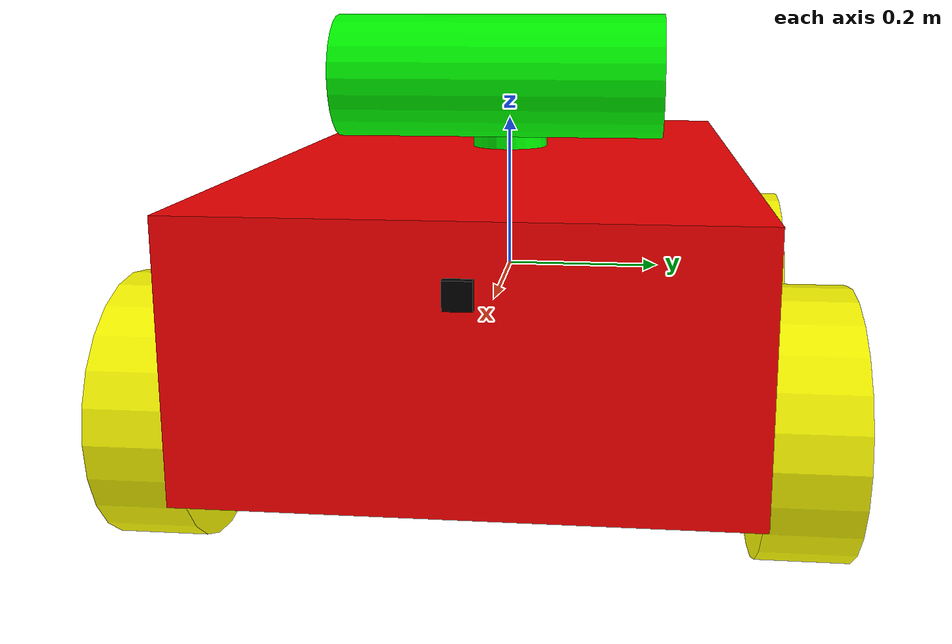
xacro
<?xml version="1.0"?>
<robot name="basic_bot" xmlns:xacro="http:/www.ros.org/wiki/xacro">

<xacro:property name="body_x" value="1"/>
<xacro:property name="body_y" value="0.6"/>
<xacro:property name="body_z" value="0.3"/>

<xacro:property name="wheel_radius" value="0.15"/>
<xacro:property name="wheel_length" value="0.1"/>
<xacro:property name="wheel_z" value="-0.1"/>

<xacro:property name="arm_x" value="0.6"/>
<xacro:property name="arm_y" value="0.1"/>
<xacro:property name="arm_z" value="0.05"/>

<xacro:property name="hammer_radius" value="0.075"/>
<xacro:property name="hammer_length" value="0.4"/>

<xacro:property name="joint_radius" value="0.05"/>
<xacro:property name="joint_length" value="0.025"/>

<xacro:property name="body_density" value="2710.0"/>
<xacro:property name="wheel_density" value="2710.0"/>
<xacro:property name="arm_density" value="500.0"/>

<xacro:property name="pi" value="3.14158265"/>

<xacro:property name="body_mass" value="${body_density*body_x*body_y*body_z}"/>
<xacro:property name="wheel_mass" value="${wheel_density*wheel_radius*wheel_radius*wheel_length*pi}"/>
<xacro:property name="arm_mass" value="${arm_density*arm_x*arm_y*arm_z}"/>
<xacro:property name="hammer_mass" value="${arm_density*hammer_radius*hammer_radius*hammer_length*pi}"/>
<xacro:property name="joint_mass" value="${arm_density*joint_radius*joint_radius*joint_length*pi}"/>

<xacro:property name="Iy_wheel" value="${0.5*wheel_mass*wheel_radius*wheel_radius}"/>
<xacro:property name="Ixz_wheel" value="${(1/12)*wheel_mass*(3*wheel_radius*wheel_radius+wheel_length*wheel_length)}"/>

<xacro:property name="Ix_arm" value="${(1/12)*arm_mass*(arm_z*arm_z+arm_y*arm_y)}"/>
<xacro:property name="Iy_arm" value="${(1/12)*arm_mass*(arm_z*arm_z+arm_x*arm_x)}"/>
<xacro:property name="Iz_arm" value="${(1/12)*arm_mass*(arm_y*arm_y+arm_x*arm_x)}"/>

<xacro:property name="Iy_hammer" value="${0.5*hammer_mass*hammer_radius*hammer_radius}"/>
<xacro:property name="Ixz_hammer" value="${(1/12)*hammer_mass*(3*hammer_radius*hammer_radius+hammer_length*hammer_length)}"/>

<xacro:property name="Iz_joint" value="${0.5*joint_mass*joint_radius*joint_radius*pi}"/>
<xacro:property name="Ixy_joint" value="${(1/12)*joint_mass*(3*joint_radius*joint_radius+joint_length*joint_length)}"/>

<xacro:macro name="link_wheel">
	<visual>
		<origin rpy="${pi/2} 0 0" xyz="0 0 0"/>
		<geometry>
			<cylinder length="${wheel_length}" radius="${wheel_radius}"/>
		</geometry>

		<material name="yellow">
			<color rgba="1 1 0 1"/>
		</material>
	</visual>

	<collision>
		<origin rpy="${pi/2} 0 0" xyz="0 0 0"/>
		<geometry>
			<cylinder length="${wheel_length}" radius="${wheel_radius}"/>
		</geometry>
	</collision>

	<inertial>
		<origin rpy="0 0 0" xyz="0 0 0"/>
		<mass value="${wheel_mass}"/>
		<inertia ixx="${Ixz_wheel}" ixy="0" ixz="0" iyy="${Iy_wheel}" iyz="0" izz="${Ixz_wheel}"/>
	</inertial>
</xacro:macro>

<xacro:macro name="link_arm">
	<visual>
		<origin rpy="0 0 0" xyz="${0.5*(arm_x-arm_y)} 0 0"/>
		<geometry>
			<box size="${arm_x} ${arm_y} ${arm_z}"/>
		</geometry>

		<material name="blue">
			<color rgba="0 0 1 1"/>
		</material>
	</visual>

	<collision>
		<origin rpy="0 0 0" xyz="${0.5*(arm_x-arm_y)} 0 0"/>
		<geometry>
			<box size="${arm_x} ${arm_y} ${arm_z}"/>
		</geometry>
	</collision>

	<inertial>
		<origin rpy="0 0 0" xyz="0 0 0"/>
		<mass value="${arm_mass}"/>
		<inertia ixx="${Ix_arm}" ixy="0" ixz="0" iyy="${Iy_arm}" iyz="0" izz="${Iz_arm}"/>
	</inertial>
</xacro:macro>

<xacro:include filename="$(find robot_model_pkg)/urdf/robot.gazebo" />
<xacro:include filename="$(find robot_model_pkg)/urdf/camera.xacro" />
<xacro:include filename="$(find robot_model_pkg)/urdf/transmission.xacro" />

<link name="dummy">
</link>
<joint name="dummy_joint" type="fixed">
	<parent link="dummy"/>
	<child link="body_link"/>
</joint>

<link name="body_link">
	<visual>
		<origin rpy="0 0 0" xzy="0 0 0"/>
		<geometry>
			<box size="${body_x}  ${body_y} ${body_z}" />
		</geometry>

		<material name="red">
			<color rgba="1 0 0 1"/>
		</material>
	</visual>

	<collision>
		<origin rpy="0 0 0" xzy="0 0 0"/>
		<geometry>
			<box size="${body_x} ${body_y} ${body_z}" />
		</geometry>
	</collision>

	<inertial>
		<origin rpy="0 0 0" xzy="0 0 0"/>
		<mass value="${body_mass}"/>
	<inertia
	ixx="${(1/12)*body_mass*(body_y*body_y+body_z*body_z)}" ixy="0" ixz="0"
	iyy="${(1/12)*body_mass*(body_x*body_x+body_z*body_z)}" iyz="0"
	izz="${(1/12)*body_mass*(body_x*body_x+body_y*body_y)}"/>
	</inertial>
</link>

<joint name="wheel1_joint" type="continuous">
	<parent link="body_link"/>
	<child link="wheel1_link"/>
	<origin xyz="${-body_x/2+1.2*wheel_radius} ${-body_y/2-wheel_length/2} ${wheel_z}"
	rpy="0 0 0" />
	<axis xyz="0 1 0"/>
	<limit effort="1000" velocity="1000"/>
	<dynamics damping="1.0" friction="1.0"/>
</joint>

<link name="wheel1_link">
	<xacro:link_wheel/>
</link>

<joint name="wheel2_joint" type="continuous">
	<parent link="body_link"/>
	<child link="wheel2_link"/>
	<origin xyz="${-body_x/2+1.2*wheel_radius} ${body_y/2+wheel_length/2} ${wheel_z}"
	rpy="0 0 0" />
	<axis xyz="0 1 0"/>
	<limit effort="1000" velocity="1000"/>
	<dynamics damping="1.0" friction="1.0"/>
</joint>

<link name="wheel2_link">

	<xacro:link_wheel />
</link>

<joint name="wheel3_joint" type="continuous">
	<parent link="body_link"/>
	<child link="wheel3_link"/>
	<origin xyz="${body_x/2-1.2*wheel_radius} ${-body_y/2-wheel_length/2} ${wheel_z}"
	rpy="0 0 0" />
	<axis xyz="0 1 0"/>
	<limit effort="1000" velocity="1000"/>
	<dynamics damping="1.0" friction="1.0"/>
</joint>

<link name="wheel3_link">
	<xacro:link_wheel />
</link>

<joint name="wheel4_joint" type="continuous">
	<parent link="body_link"/>
	<child link="wheel4_link"/>
	<origin xyz="${body_x/2-1.2*wheel_radius} ${body_y/2+wheel_length/2} ${wheel_z}"
	rpy="0 0 0" />
	<axis xyz="0 1 0"/>
	<limit effort="1000" velocity="1000"/>
	<dynamics damping="1.0" friction="1.0"/>
</joint>

<link name="wheel4_link">
	<xacro:link_wheel />
</link>

<joint name="arm1_joint" type="revolute">
	<parent link="body_link"/>
	<child link="armjoint1_link"/>
	<origin xyz="0 0 ${0.5*(body_z+arm_z)}" rpy="0 0 ${pi}" />
	<axis xyz="0 0 1"/>
	<limit effort="1000" velocity="10" lower="0" upper="${pi}"/>
	<dynamics damping="1.0" friction="1.0"/>
</joint>

<link name="armjoint1_link">
	<visual>
		<origin rpy="0 0 0" xyz="0 0 0"/>
		<geometry>
			<cylinder length="${joint_length}" radius="${joint_radius}"/>
		</geometry>

		<material name="green">
			<color rgba="0 1 0 1"/>
		</material>
	</visual>

	<collision>
		<origin rpy="0 0 0" xyz="0 0 0"/>
		<geometry>
			<cylinder length="${joint_length}" radius="${joint_radius}"/>
		</geometry>
	</collision>

	<inertial>
		<origin rpy="0 0 0" xyz="0 0 0"/>
		<mass value="${joint_mass}"/>
		<inertia ixx="${Ixy_joint}" ixy="0" ixz="0" iyy="${Ixy_joint}" iyz="0" izz="${Iz_joint}"/>
	</inertial>
</link>

<joint name="arm1_connect" type="fixed">
	<parent link="armjoint1_link"/>
	<child link="arm1_link"/>
	<origin xyz="0 0 ${0.5*(arm_z+joint_length)}" rpy="0 0 0" />
</joint>

<link name="arm1_link">
	<xacro:link_arm />
</link>

<joint name="arm2_joint" type="revolute">
	<parent link="arm1_link"/>
	<child link="arm2_link"/>
	<origin xyz="${arm_x - arm_y} 0 ${arm_z}" rpy="0 0 ${pi}" />
	<axis xyz="0 0 1"/>
	<limit effort="1000" velocity="10" lower="0" upper="${pi}"/>
	<dynamics damping="1.0" friction="1.0"/>
</joint>

<link name="arm2_link">
	<xacro:link_arm />
</link>

<joint name="hammer_connect" type="fixed">
	<parent link="arm2_link"/>
	<child link="hammer_link"/>
	<origin xyz="${arm_x-(0.5*arm_y)+hammer_radius} 0 0" rpy="0 0 0" />
</joint>

<link name="hammer_link">
	<visual>
		<origin rpy="${pi/2} 0 0" xyz="0 0 0"/>
		<geometry>
			<cylinder length="${hammer_length}" radius="${hammer_radius}"/>
		</geometry>

		<material name="green">
			<color rgba="0 1 0 1"/>
		</material>
	</visual>

	<collision>
		<origin rpy="${pi/2} 0 0" xyz="0 0 0"/>
		<geometry>
			<cylinder length="${hammer_length}" radius="${hammer_radius}"/>
		</geometry>
	</collision>

	<inertial>
		<origin rpy="0 0 0" xyz="0 0 0"/>
		<mass value="${hammer_mass}"/>
		<inertia ixx="${Ixz_hammer}" ixy="0" ixz="0" iyy="${Iy_hammer}" iyz="0" izz="${Ixz_hammer}"/>
	</inertial>
</link>

</robot>

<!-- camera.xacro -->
<robot xmlns:xacro="http://www.ros.org/wiki/xacro" >

    <joint name="camera_joint" type="fixed">
        <parent link="body_link"/>
        <child link="camera_link"/>
        <origin xyz="${0.5*body_x+0.005} 0 0.08" rpy="0 0 0"/>
    </joint>

    <link name="camera_link">
        <visual>
            <geometry>
                <box size="0.010 0.03 0.03"/>
            </geometry>
            <material name="Black">
            	<color rgba="0 0 0 1"/>
            </material>
        </visual>
    </link>

    <joint name="camera_optical_joint" type="fixed">
        <parent link="camera_link"/>
        <child link="camera_link_optical"/>
        <origin xyz="0 0 0" rpy="${-pi/2} 0 ${-pi/2}"/>
    </joint>

    <link name="camera_link_optical"></link>

    <gazebo reference="camera_link">
        <material>Gazebo/Black</material>

        <sensor name="camera" type="camera">
            <pose> 0 0 0 0 0 0 </pose>
            <visualize>true</visualize>
            <update_rate>10</update_rate>
            <camera>
                <horizontal_fov>1.089</horizontal_fov>
                <image>
                    <format>R8G8B8</format>
                    <width>640</width>
                    <height>480</height>
                </image>
                <clip>
                    <near>0.05</near>
                    <far>8.0</far>
                </clip>
            </camera>
            <plugin name="camera_controller" filename="libgazebo_ros_camera.so">
		<alwaysOn>true</alwaysOn>
		<updateRate>0.0</updateRate>
		<cameraName>basic_bot/camera1</cameraName>
            	<imageTopicName>image_raw</imageTopicName>
            	<cameraInfoTopicName>camera_info</cameraInfoTopicName>
                <frame_name>camera_link_optical</frame_name>
            </plugin>
        </sensor>
    </gazebo>

</robot>
